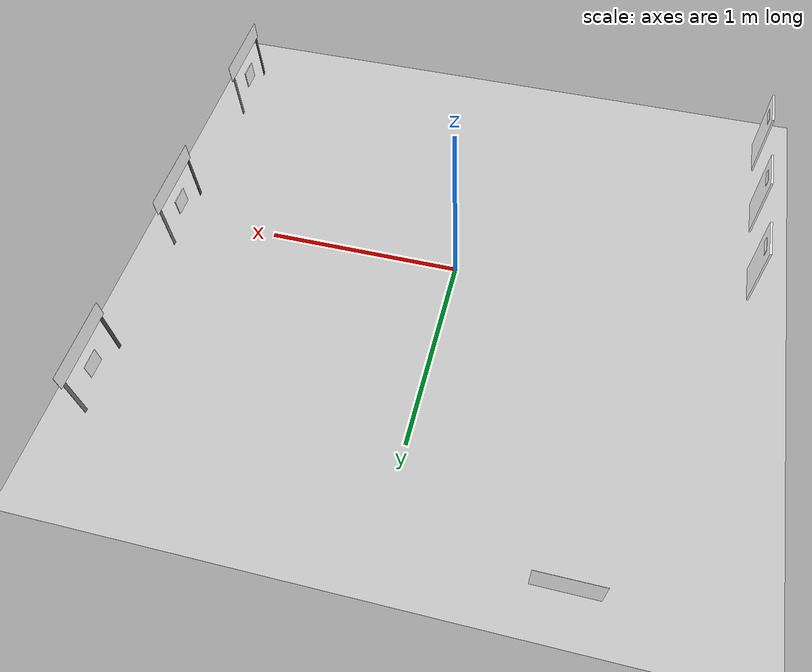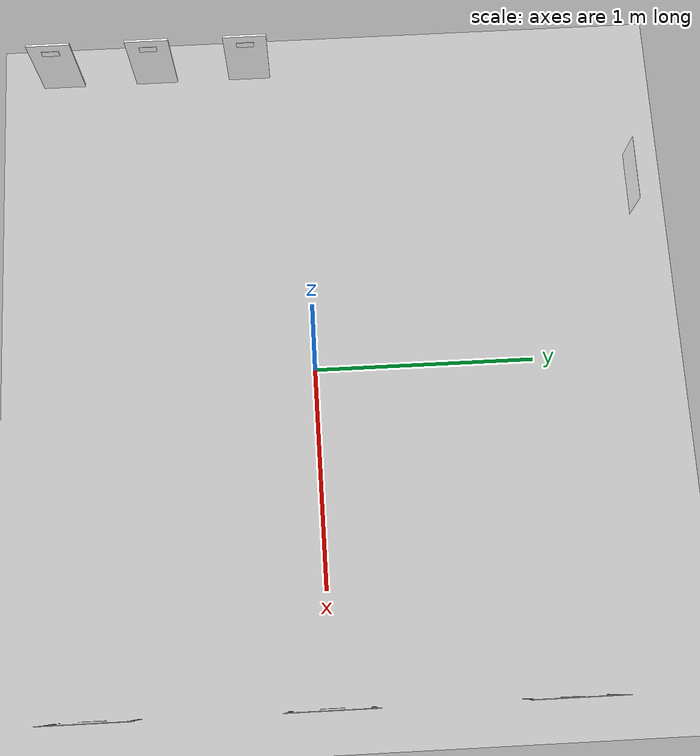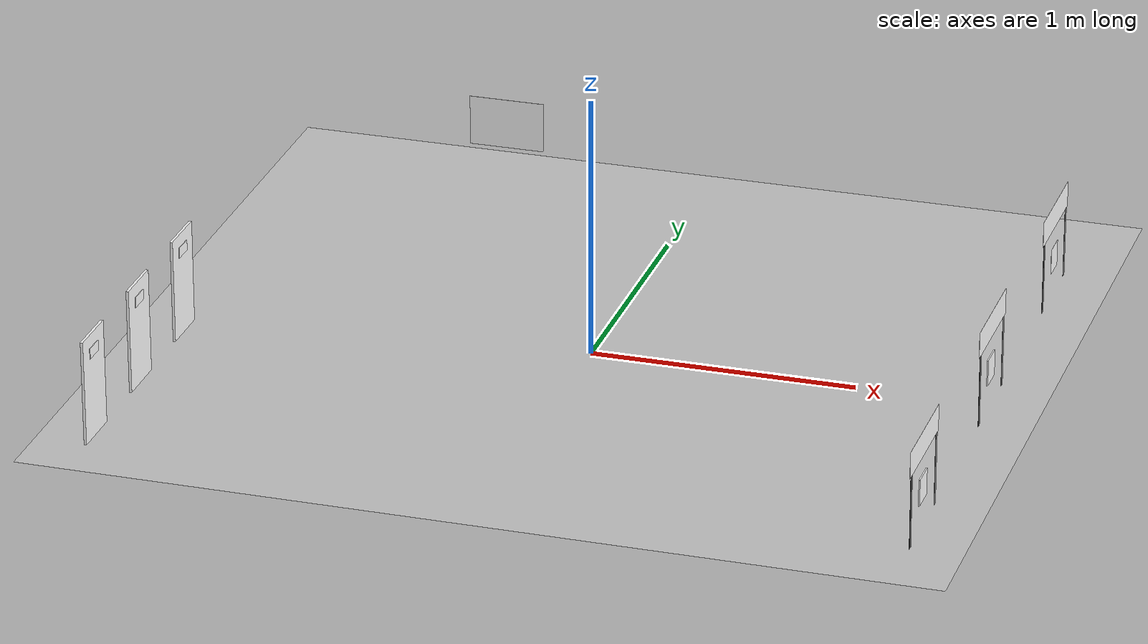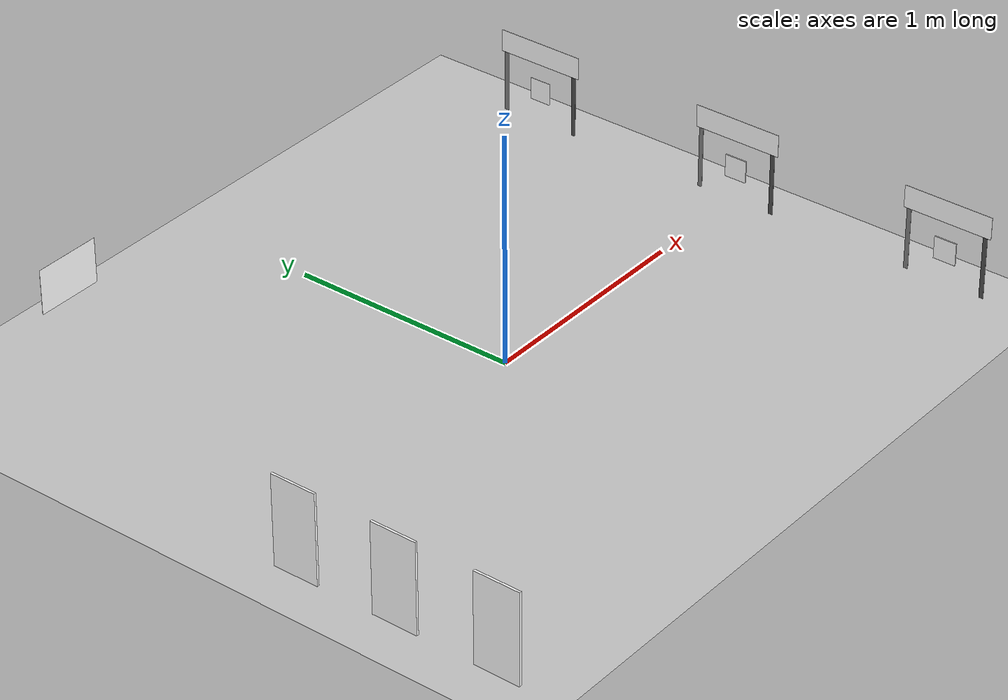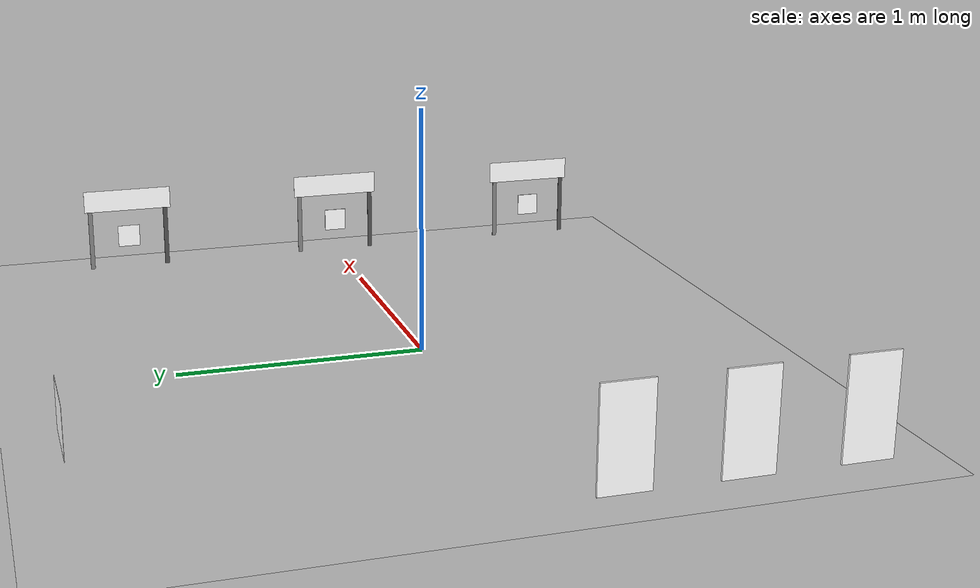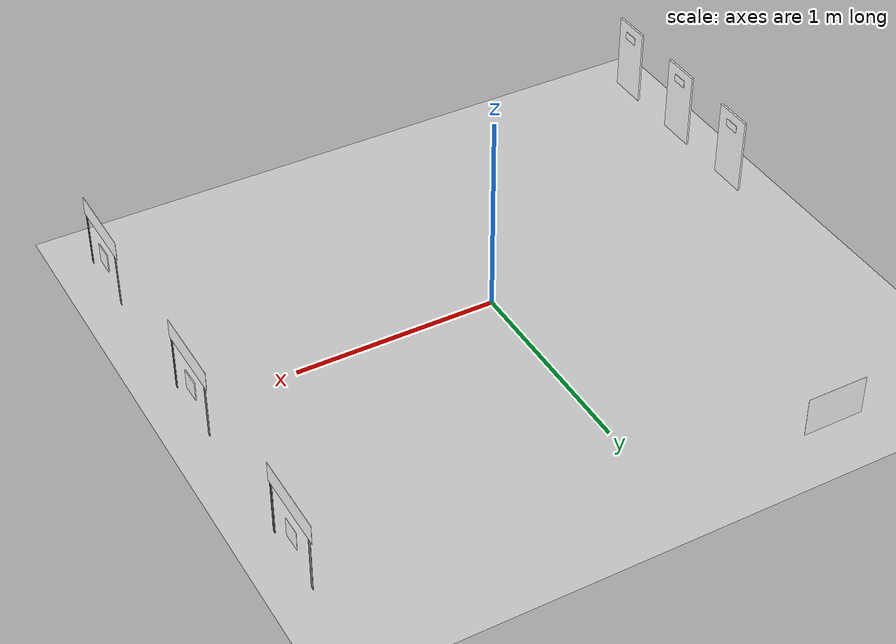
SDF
<sdf version="1.8">
 <world name="default">
  <plugin filename="gz-sim-physics-system" name="gz::sim::systems::Physics"/>
  <plugin filename="gz-sim-user-commands-system" name="gz::sim::systems::UserCommands"/>
  <plugin filename="gz-sim-scene-broadcaster-system" name="gz::sim::systems::SceneBroadcaster"/>
  <plugin filename="gz-sim-sensors-system" name="gz::sim::systems::Sensors">
   <render_engine>ogre2</render_engine>
  </plugin>
  <plugin filename="gz-sim-imu-system" name="gz::sim::systems::Imu"/>
  <scene>
   <ambient>1 1 1 1</ambient>
   <shadows>0</shadows>
   <grid>1</grid>
   <background>0.7 0.7 0.7 1</background>
  </scene>
  <light type="directional" name="sun">
   <cast_shadows>0</cast_shadows>
   <pose>0 0 5 0 0 0</pose>
   <diffuse>0.9 0.9 0.9 1</diffuse>
   <specular>0.2 0.2 0.2 1</specular>
   <attenuation>
    <range>1000</range>
    <constant>0.9</constant>
    <linear>0.01</linear>
    <quadratic>0.001</quadratic>
   </attenuation>
   <direction>0.5 0.1 -0.9</direction>
  </light>
  <include><uri>model://turtlebot3_autorace_2025/ground</uri></include>
  <include><pose>1.5 0 0 0 0 0</pose><uri>model://turtlebot3_autorace_2025/pickup_desk</uri></include>
  <include><pose>-1.3 -1.5 0 0 0 0</pose><uri>model://turtlebot3_autorace_2025/place_zone</uri></include>
  <include><pose>-0.8 1.5 0 0 0 0</pose><uri>model://turtlebot3_autorace_2025/order_panel</uri></include>
  <physics type="ode">
   <real_time_update_rate>1000.0</real_time_update_rate>
   <max_step_size>0.001</max_step_size>
   <real_time_factor>1</real_time_factor>
   <ode>
    <solver>
     <type>quick</type>
     <iters>150</iters>
     <precon_iters>0</precon_iters>
     <sor>1.400000</sor>
     <use_dynamic_moi_rescaling>1</use_dynamic_moi_rescaling>
    </solver>
    <constraints>
     <cfm>0.00001</cfm>
     <erp>0.2</erp>
     <contact_max_correcting_vel>2000.000000</contact_max_correcting_vel>
     <contact_surface_layer>0.01000</contact_surface_layer>
    </constraints>
   </ode>
  </physics>
 </world>
</sdf>

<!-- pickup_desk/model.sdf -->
<sdf version="1.8">
  <model name="pickup_desk">
    <static>true</static>
    <link name="signboard_1">
      <pose>-0.0005 1 0.325 0 0 0</pose>
      <visual name="visual">
        <geometry>
          <box>
            <size>0.001 0.4 0.1</size>
          </box>
        </geometry>
        <material>
            <pbr>
              <metal>
                <albedo_map>model://turtlebot3_autorace_2025/pickup_desk/materials/textures/burger.png</albedo_map>
              </metal>
            </pbr>
          <ambient>1 1 1 1</ambient>
          <diffuse>1 1 1 1</diffuse>
        </material>
      </visual>

      <visual name="visual_left_bar_1">
        <pose>0 0.175 -0.1875 0 0 0</pose>
        <geometry>
          <box>
            <size>0.001 0.02 0.275</size>
          </box>
        </geometry>
        <material>
          <ambient>0.5 0.5 0.5 1</ambient>
          <diffuse>0.5 0.5 0.5 1</diffuse>
        </material>
      </visual>

      <visual name="visual_right_bar_1">
        <pose>0 -0.175 -0.1875 0 0 0</pose>
        <geometry>
          <box>
            <size>0.001 0.02 0.275</size>
          </box>
        </geometry>
        <material>
          <ambient>0.3 0.3 0.3 1</ambient>
          <diffuse>0.3 0.3 0.3 1</diffuse>
        </material>
      </visual>
    </link>

    <link name="QR_1">
      <pose>-0.0005 1 0.15 0 0 0</pose>
      <visual name="visual">
        <geometry>
          <box>
            <size>0.001 0.1 0.1</size>
          </box>
        </geometry>
        <material>
            <pbr>
              <metal>
                <albedo_map>model://turtlebot3_autorace_2025/pickup_desk/materials/textures/marker0.png</albedo_map>
              </metal>
            </pbr>
          <ambient>1 1 1 1</ambient>
          <diffuse>1 1 1 1</diffuse>
        </material>
      </visual>
    </link>

    <link name="signboard_2">
      <pose>-0.0005 0 0.325 0 0 0</pose>
      <visual name="visual">
        <geometry>
          <box>
            <size>0.001 0.4 0.1</size>
          </box>
        </geometry>
        <material>
            <pbr>
              <metal>
                <albedo_map>model://turtlebot3_autorace_2025/pickup_desk/materials/textures/pizza.png</albedo_map>
              </metal>
            </pbr>
          <ambient>1 1 1 1</ambient>
          <diffuse>1 1 1 1</diffuse>
        </material>
      </visual>

      <visual name="visual_left_bar_2">
        <pose>0 0.175 -0.1875 0 0 0</pose>
        <geometry>
          <box>
            <size>0.001 0.02 0.275</size>
          </box>
        </geometry>
        <material>
          <ambient>0.5 0.5 0.5 1</ambient>
          <diffuse>0.5 0.5 0.5 1</diffuse>
        </material>
      </visual>

      <visual name="visual_right_bar_2">
        <pose>0 -0.175 -0.1875 0 0 0</pose>
        <geometry>
          <box>
            <size>0.001 0.02 0.275</size>
          </box>
        </geometry>
        <material>
          <ambient>0.3 0.3 0.3 1</ambient>
          <diffuse>0.3 0.3 0.3 1</diffuse>
        </material>
      </visual>
    </link>

    <link name="QR_2">
      <pose>-0.0025 0 0.15 0 0 0</pose>
      <visual name="visual">
        <geometry>
          <box>
            <size>0.005 0.1 0.1</size>
          </box>
        </geometry>
        <material>
            <pbr>
              <metal>
                <albedo_map>model://turtlebot3_autorace_2025/pickup_desk/materials/textures/marker0.png</albedo_map>
              </metal>
            </pbr>
          <ambient>1 1 1 1</ambient>
          <diffuse>1 1 1 1</diffuse>
        </material>
      </visual>
    </link>

    <link name="signboard_3">
      <pose>-0.0005 -1 0.325 0 0 0</pose>
      <visual name="visual">
        <geometry>
          <box>
            <size>0.001 0.4 0.1</size>
          </box>
        </geometry>
        <material>
            <pbr>
              <metal>
                <albedo_map>model://turtlebot3_autorace_2025/pickup_desk/materials/textures/chicken.png</albedo_map>
              </metal>
            </pbr>
          <ambient>1 1 1 1</ambient>
          <diffuse>1 1 1 1</diffuse>
        </material>
      </visual>

      <visual name="visual_left_bar_3">
        <pose>0 0.175 -0.1875 0 0 0</pose>
        <geometry>
          <box>
            <size>0.001 0.02 0.275</size>
          </box>
        </geometry>
        <material>
          <ambient>0.5 0.5 0.5 1</ambient>
          <diffuse>0.5 0.5 0.5 1</diffuse>
        </material>
      </visual>

      <visual name="visual_right_bar_3">
        <pose>0 -0.175 -0.1875 0 0 0</pose>
        <geometry>
          <box>
            <size>0.001 0.02 0.275</size>
          </box>
        </geometry>
        <material>
          <ambient>0.3 0.3 0.3 1</ambient>
          <diffuse>0.3 0.3 0.3 1</diffuse>
        </material>
      </visual>
    </link>

    <link name="QR_3">
      <pose>-0.0025 -1 0.15 0 0 0</pose>
      <visual name="visual">
        <geometry>
          <box>
            <size>0.005 0.1 0.1</size>
          </box>
        </geometry>
        <material>
            <pbr>
              <metal>
                <albedo_map>model://turtlebot3_autorace_2025/pickup_desk/materials/textures/marker0.png</albedo_map>
              </metal>
            </pbr>
          <ambient>1 1 1 1</ambient>
          <diffuse>1 1 1 1</diffuse>
        </material>
      </visual>
    </link>
  </model>
</sdf>

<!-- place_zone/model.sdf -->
<sdf version="1.8">
  <model name="place_zone">
    <static>true</static>
    <link name="door_1">
      <pose>-0.195 1.25 0.2 0 0 0</pose>
      <collision name="collision">
        <geometry>
          <box>
            <size>0.01 0.2 0.4</size>
          </box>
        </geometry>
      </collision>
      <visual name="visual">
        <geometry>
          <box>
            <size>0.01 0.2 0.4</size>
          </box>
        </geometry>
        <material>
            <pbr>
              <metal>
                <albedo_map>model://turtlebot3_autorace_2025/place_zone/materials/textures/door.png</albedo_map>
              </metal>
            </pbr>
            <ambient>1 1 1 1</ambient>
            <diffuse>1 1 1 1</diffuse>
            <specular>0.2 0.2 0.2 1</specular>
            <emissive>0 0 0 1</emissive>
        </material>
      </visual>
    </link>

    <link name="panel_1">
      <pose>-0.19 1.25 0.33 0 0 0</pose>
      <visual name="visual">
        <geometry>
          <box>
            <size>0.005 0.08 0.04</size>
          </box>
        </geometry>
        <material>
            <pbr>
              <metal>
                <albedo_map>model://turtlebot3_autorace_2025/place_zone/materials/textures/103.png</albedo_map>
              </metal>
            </pbr>
            <ambient>1 1 1 1</ambient>
            <diffuse>1 1 1 1</diffuse>
            <specular>0.2 0.2 0.2 1</specular>
            <emissive>0 0 0 1</emissive>
        </material>
      </visual>
    </link>

    <link name="door_2">
      <pose>-0.195 0.8 0.2 0 0 0</pose>
      <collision name="collision">
        <geometry>
          <box>
            <size>0.01 0.2 0.4</size>
          </box>
        </geometry>
      </collision>
      <visual name="visual">
        <geometry>
          <box>
            <size>0.01 0.2 0.4</size>
          </box>
        </geometry>
        <material>
            <pbr>
              <metal>
                <albedo_map>model://turtlebot3_autorace_2025/place_zone/materials/textures/door.png</albedo_map>
              </metal>
            </pbr>
            <ambient>1 1 1 1</ambient>
            <diffuse>1 1 1 1</diffuse>
            <specular>0.2 0.2 0.2 1</specular>
            <emissive>0 0 0 1</emissive>
        </material>
      </visual>
    </link>

    <link name="panel_2">
      <pose>-0.19 0.8 0.33 0 0 0</pose>
      <visual name="visual">
        <geometry>
          <box>
            <size>0.005 0.08 0.04</size>
          </box>
        </geometry>
        <material>
            <pbr>
              <metal>
                <albedo_map>model://turtlebot3_autorace_2025/place_zone/materials/textures/102.png</albedo_map>
              </metal>
            </pbr>
            <ambient>1 1 1 1</ambient>
            <diffuse>1 1 1 1</diffuse>
            <specular>0.2 0.2 0.2 1</specular>
            <emissive>0 0 0 1</emissive>
        </material>
      </visual>
    </link>

    <link name="door_3">
      <pose>-0.195 0.35 0.2 0 0 0</pose>
      <collision name="collision">
        <geometry>
          <box>
            <size>0.01 0.2 0.4</size>
          </box>
        </geometry>
      </collision>
      <visual name="visual">
        <geometry>
          <box>
            <size>0.01 0.2 0.4</size>
          </box>
        </geometry>
        <material>
            <pbr>
              <metal>
                <albedo_map>model://turtlebot3_autorace_2025/place_zone/materials/textures/door.png</albedo_map>
              </metal>
            </pbr>
            <ambient>1 1 1 1</ambient>
            <diffuse>1 1 1 1</diffuse>
            <specular>0.2 0.2 0.2 1</specular>
            <emissive>0 0 0 1</emissive>
        </material>
      </visual>
    </link>

    <link name="panel_3">
      <pose>-0.19 0.35 0.33 0 0 0</pose>
      <visual name="visual">
        <geometry>
          <box>
            <size>0.005 0.08 0.04</size>
          </box>
        </geometry>
        <material>
            <pbr>
              <metal>
                <albedo_map>model://turtlebot3_autorace_2025/place_zone/materials/textures/101.png</albedo_map>
              </metal>
            </pbr>
            <ambient>1 1 1 1</ambient>
            <diffuse>1 1 1 1</diffuse>
            <specular>0.2 0.2 0.2 1</specular>
            <emissive>0 0 0 1</emissive>
        </material>
      </visual>
    </link>
  </model>
</sdf>

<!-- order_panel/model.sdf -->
<sdf version="1.8">
  <model name="order_panel">
    <static>true</static>

    <link name="panel">
      <pose>0 -0.0005 0.2 0 0 0</pose>
      <visual name="visual">
        <geometry>
          <box>
            <size>0.3 0.001 0.2</size>
          </box>
        </geometry>
        <material>
            <pbr>
              <metal>
                <albedo_map>model://turtlebot3_autorace_2025/order_panel/materials/textures/order_image.png</albedo_map>
              </metal>
            </pbr>
          <ambient>1 1 1 1</ambient>
          <diffuse>1 1 1 1</diffuse>
        </material>
      </visual>
    </link>

  </model>
</sdf>
